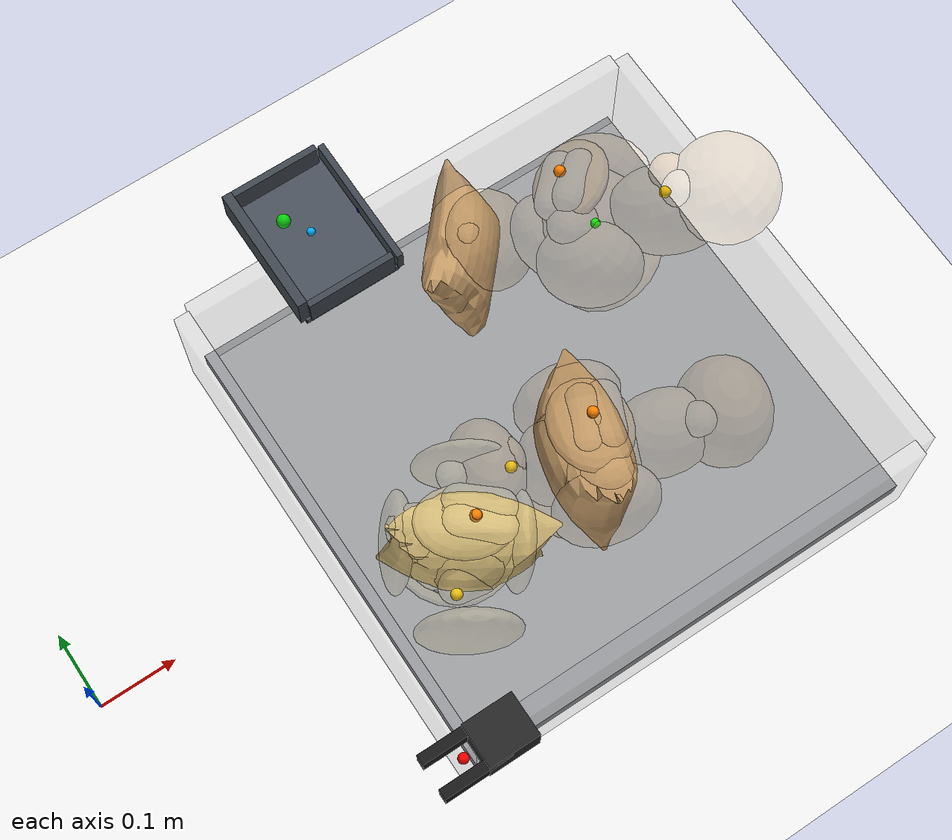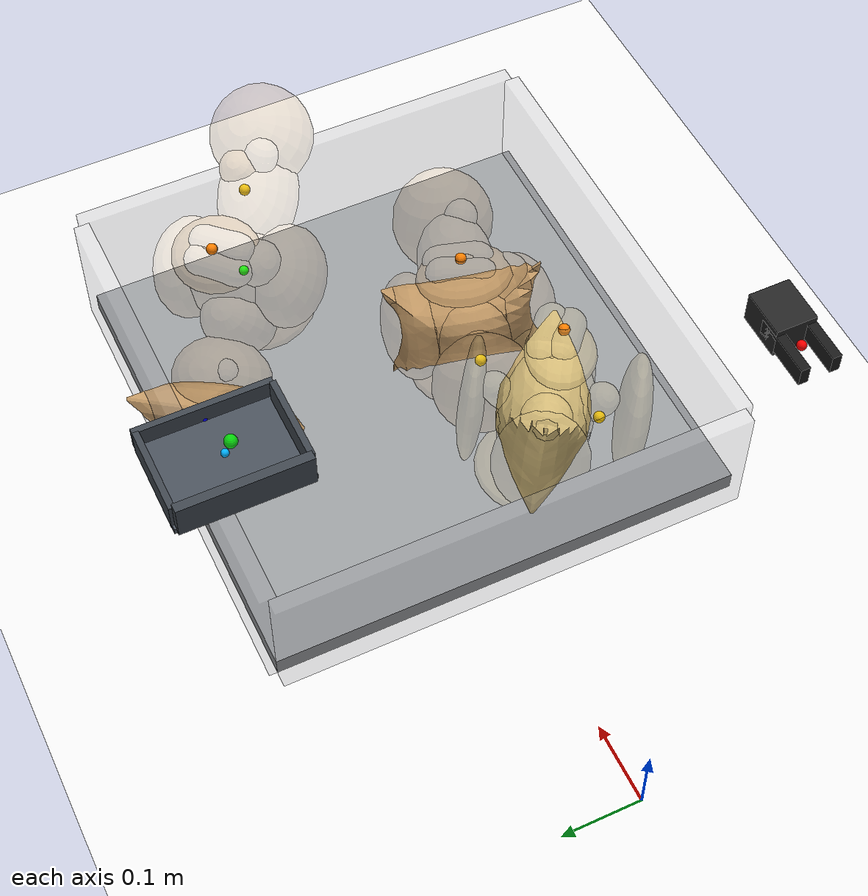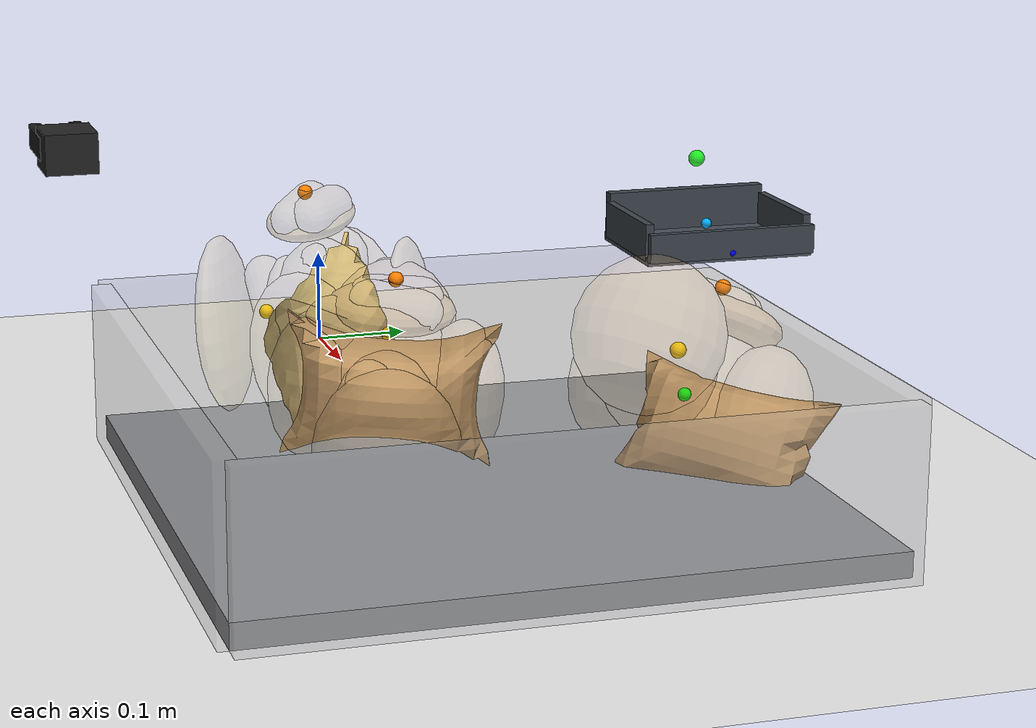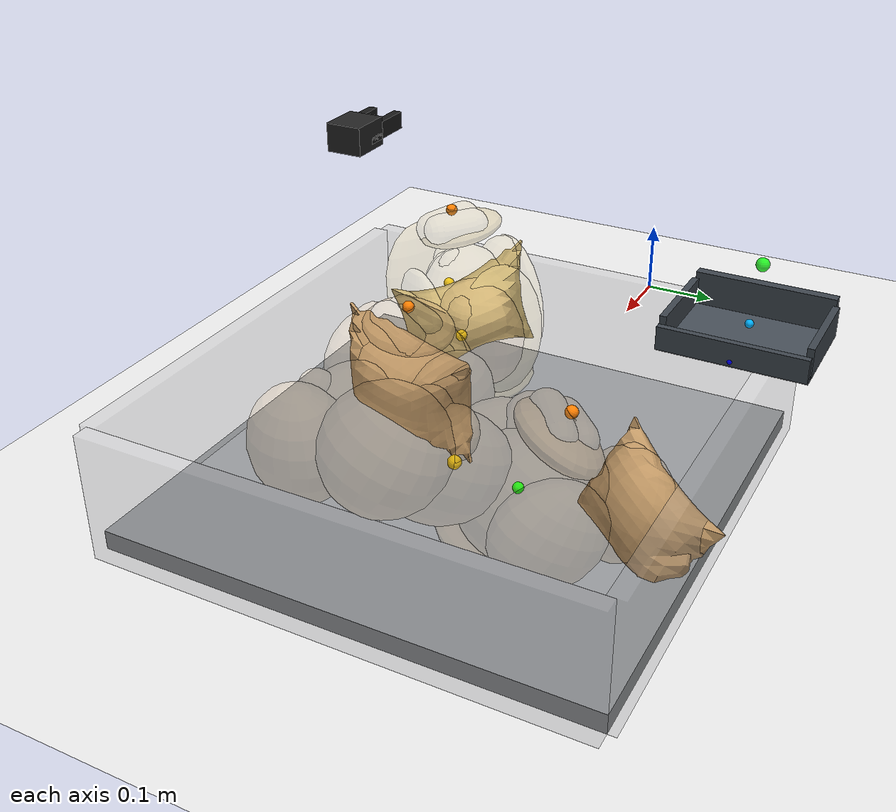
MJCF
<mujoco model="eccentric_fill_seed10">
  <compiler angle="radian" coordinate="local" inertiafromgeom="true" meshdir="D:/Michael/2025/01.Research/01.Parceldetection/16.Pybullet/bullet3-master (1)/bullet3-master/examples/pybullet/examples/DeformableTest/Sackcodex2/object"/>
  <option timestep="0.002" gravity="0 0 -9.81" integrator="implicitfast" iterations="100" tolerance="1e-8"/>
  <size memory="768M" nconmax="12000"/>

  <visual>
    <global azimuth="128" elevation="-20" offwidth="1280" offheight="720"/>
    <headlight ambient="0.34 0.34 0.34" diffuse="0.78 0.78 0.78" specular="0.15 0.15 0.15"/>
    <rgba haze="0.11 0.13 0.18 1"/>
  </visual>

  <default>
    <geom condim="4" friction="1.15 0.03 0.01" margin="0.003" solimp="0.93 0.98 0.003" solref="0.012 1"/>
    <joint damping="1.2" armature="0.002"/>
    <position kp="2500" forcelimited="true" forcerange="-420 420"/>
    <motor ctrllimited="true"/>
  </default>

  <asset>
    <mesh name="sack_0_visual_mesh" file="sack6Apply.obj" scale="0.0720 0.0720 0.0750"/>
    <mesh name="sack_1_visual_mesh" file="sack3.obj" scale="0.0686 0.0686 0.0706"/>
    <mesh name="sack_2_visual_mesh" file="sack8.obj" scale="0.0709 0.0709 0.0762"/>
  </asset>

  <worldbody>
    <light name="key" pos="0.85 0.15 1.8" dir="-0.2 -0.1 -1" directional="true"/>
    <geom name="floor" type="plane" size="2 2 0.1" rgba="0.93 0.93 0.93 1"/>
    <geom name="work_pad" type="box" pos="0.62 0 0.012" size="0.30 0.30 0.012" rgba="0.60 0.61 0.62 1" friction="1.4 0.05 0.01"/>
    <geom name="corral_front" type="box" pos="0.93 0.00 0.08" size="0.010 0.30 0.08" rgba="0.55 0.55 0.58 0.22" friction="1.0 0.03 0.01"/>
    <geom name="corral_back" type="box" pos="0.31 0.00 0.08" size="0.010 0.30 0.08" rgba="0.55 0.55 0.58 0.18" friction="1.0 0.03 0.01"/>
    <geom name="corral_left" type="box" pos="0.62 0.30 0.08" size="0.30 0.010 0.08" rgba="0.55 0.55 0.58 0.14" friction="1.0 0.03 0.01"/>
    <geom name="corral_right" type="box" pos="0.62 -0.30 0.08" size="0.30 0.010 0.08" rgba="0.55 0.55 0.58 0.14" friction="1.0 0.03 0.01"/>
    <camera name="overview" pos="1.22 0.00 0.92" xyaxes="0 1 0 -0.46 0 0.88"/>

    <body name="gripper_mocap" mocap="true" pos="0.36 -0.33 0.30" quat="0.707107 0 -0.707107 0"/>
    <body name="scoop_mocap" mocap="true" pos="0.42 0.28 0.20" quat="1 0 0 0"/>

    <body name="gripper_ctrl_base" pos="0.36 -0.33 0.30">
      <inertial pos="0 0 0" mass="0.001" diaginertia="1e-6 1e-6 1e-6"/>
      <joint name="gripper_ctrl_x" type="slide" axis="1 0 0" limited="true" range="0.20 1.00"/>
      <body name="gripper_ctrl_y_body">
        <inertial pos="0 0 0" mass="0.001" diaginertia="1e-6 1e-6 1e-6"/>
        <joint name="gripper_ctrl_y" type="slide" axis="0 1 0" limited="true" range="-0.60 0.60"/>
        <body name="gripper_ctrl_z_body">
          <inertial pos="0 0 0" mass="0.001" diaginertia="1e-6 1e-6 1e-6"/>
          <joint name="gripper_ctrl_z" type="slide" axis="0 0 1" limited="true" range="0.04 0.70"/>
          <body name="gripper_ctrl_yaw_body">
            <inertial pos="0 0 0" mass="0.001" diaginertia="1e-6 1e-6 1e-6"/>
            <joint name="gripper_ctrl_yaw" type="hinge" axis="0 0 1" limited="true" range="-3.1416 3.1416"/>
            <body name="gripper_ctrl_pitch_body">
              <inertial pos="0 0 0" mass="0.001" diaginertia="1e-6 1e-6 1e-6"/>
              <joint name="gripper_ctrl_pitch" type="hinge" axis="0 1 0" limited="true" range="-3.1416 3.1416"/>
              <body name="gripper_ctrl_roll_body">
                <inertial pos="0 0 0" mass="0.001" diaginertia="1e-6 1e-6 1e-6"/>
                <joint name="gripper_ctrl_roll" type="hinge" axis="1 0 0" limited="true" range="-3.1416 3.1416"/>
              </body>
            </body>
          </body>
        </body>
      </body>
    </body>

    <body name="scoop_ctrl_base" pos="0.42 0.28 0.20">
      <inertial pos="0 0 0" mass="0.001" diaginertia="1e-6 1e-6 1e-6"/>
      <joint name="scoop_ctrl_x" type="slide" axis="1 0 0" limited="true" range="0.20 1.00"/>
      <body name="scoop_ctrl_y_body">
        <inertial pos="0 0 0" mass="0.001" diaginertia="1e-6 1e-6 1e-6"/>
        <joint name="scoop_ctrl_y" type="slide" axis="0 1 0" limited="true" range="-0.60 0.60"/>
        <body name="scoop_ctrl_z_body">
          <inertial pos="0 0 0" mass="0.001" diaginertia="1e-6 1e-6 1e-6"/>
          <joint name="scoop_ctrl_z" type="slide" axis="0 0 1" limited="true" range="0.04 0.70"/>
          <body name="scoop_ctrl_yaw_body">
            <inertial pos="0 0 0" mass="0.001" diaginertia="1e-6 1e-6 1e-6"/>
            <joint name="scoop_ctrl_yaw" type="hinge" axis="0 0 1" limited="true" range="-3.1416 3.1416"/>
            <body name="scoop_ctrl_pitch_body">
              <inertial pos="0 0 0" mass="0.001" diaginertia="1e-6 1e-6 1e-6"/>
              <joint name="scoop_ctrl_pitch" type="hinge" axis="0 1 0" limited="true" range="-3.1416 3.1416"/>
              <body name="scoop_ctrl_roll_body">
                <inertial pos="0 0 0" mass="0.001" diaginertia="1e-6 1e-6 1e-6"/>
                <joint name="scoop_ctrl_roll" type="hinge" axis="1 0 0" limited="true" range="-3.1416 3.1416"/>
              </body>
            </body>
          </body>
        </body>
      </body>
    </body>

    <body name="gripper_tool" pos="0.36 -0.33 0.30" quat="0.707107 0 -0.707107 0">
      <freejoint name="gripper_tool_free"/>
      <inertial pos="0 0 0.04" mass="0.08" diaginertia="0.0002 0.0002 0.0002"/>
      <geom name="gripper_palm" type="box" pos="0 0 0.030" size="0.020 0.026 0.030" rgba="0.14 0.14 0.14 1"/>
      <body name="left_finger_body" pos="0 0 0.072">
        <joint name="left_finger_slide" type="slide" axis="0 1 0" limited="true" range="0.010 0.040" damping="12"/>
        <geom name="left_finger_geom" type="box" pos="0 0.020 0" size="0.012 0.006 0.040" rgba="0.10 0.10 0.10 1" friction="2.2 0.05 0.01"/>
      </body>
      <body name="right_finger_body" pos="0 0 0.072">
        <joint name="right_finger_slide" type="slide" axis="0 -1 0" limited="true" range="0.010 0.040" damping="12"/>
        <geom name="right_finger_geom" type="box" pos="0 -0.020 0" size="0.012 0.006 0.040" rgba="0.10 0.10 0.10 1" friction="2.2 0.05 0.01"/>
      </body>
      <site name="gripper_pinch_site" pos="0 0 0.074" size="0.006" rgba="1 0 0 1"/>
    </body>

    <body name="scoop_tool" pos="0.42 0.28 0.20" quat="1 0 0 0">
      <freejoint name="scoop_tool_free"/>
      <inertial pos="0 0 0.02" mass="0.10" diaginertia="0.0003 0.0003 0.0003"/>
      <geom name="scoop_plate" type="box" pos="0.062 0 0" size="0.062 0.085 0.004" rgba="0.28 0.31 0.35 1" friction="1.7 0.05 0.01"/>
      <geom name="scoop_lip" type="box" pos="0.126 0 0.014" size="0.004 0.085 0.014" rgba="0.24 0.27 0.30 1" friction="1.7 0.05 0.01"/>
      <geom name="scoop_left_rail" type="box" pos="0.062 0.082 0.018" size="0.056 0.004 0.018" rgba="0.24 0.27 0.30 1"/>
      <geom name="scoop_right_rail" type="box" pos="0.062 -0.082 0.018" size="0.056 0.004 0.018" rgba="0.24 0.27 0.30 1"/>
      <geom name="scoop_backstop" type="box" pos="0.000 0 0.022" size="0.006 0.082 0.022" rgba="0.24 0.27 0.30 1"/>
      <site name="scoop_tip_site" pos="0.126 0 0.005" size="0.005" rgba="0 0 1 1"/>
      <site name="scoop_center_site" pos="0.060 0 0.020" size="0.005" rgba="0 0.7 1 1"/>
      <site name="score_overlay_site" pos="0.030 0 0.080" size="0.008" rgba="0 1 0 0.8"/>
    </body>

    <body name="sack_0" pos="0.6150 -0.0831 0.1159" euler="-0.0408 0.1211 -1.8466">
      <freejoint name="sack_0_free"/>

      <geom name="sack_0_visual" type="mesh" mesh="sack_0_visual_mesh" rgba="0.760 0.600 0.400 0.92" contype="0" conaffinity="0"/>
      <site name="sack_0_center_site" pos="0 0 0.000" size="0.006" rgba="0 1 0 1"/>
      <site name="sack_0_top_site" pos="0.0014 -0.0063 0.1047" size="0.007" rgba="1 0.5 0 1"/>
      <site name="sack_0_side_site" pos="0.0036 -0.0935 0.018" size="0.007" rgba="1 0.8 0 1"/>

      <geom name="sack_0_core_geom" type="ellipsoid" pos="0 0 0.0058" size="0.0435 0.0345 0.0750" mass="0.8394" rgba="0.760 0.600 0.400 0.12" friction="1.0 0.03 0.01"/>
      <geom name="sack_0_core_front" type="capsule" fromto="-0.0204 0 -0.0180 0.0536 0 0.0580" size="0.0291" mass="0.1999" rgba="0.760 0.600 0.400 0.10"/>
      <geom name="sack_0_core_left" type="capsule" fromto="-0.016 0.0638 -0.012 0.020 0.1228 0.054" size="0.0209" mass="0.3597" rgba="0.760 0.600 0.400 0.10"/>
      <geom name="sack_0_core_right" type="capsule" fromto="-0.016 -0.0638 -0.012 0.020 -0.1228 0.054" size="0.0187" mass="0.3597" rgba="0.760 0.600 0.400 0.10"/>

      <!-- 자루의 외형은 둥근 shell lobe로 보이게 하고, contact proxy는 반투명하게 숨긴다. -->
      <geom name="sack_0_shell_main_visual" type="ellipsoid" pos="0.0018 -0.0005 -0.0053" size="0.0718 0.0647 0.0820" rgba="0.760 0.600 0.400 0.16" contype="0" conaffinity="0"/>
      <geom name="sack_0_shell_left_visual" type="ellipsoid" pos="0.0040 0.0917 0.0020" size="0.0488 0.0660 0.0673" rgba="0.760 0.600 0.400 0.14" contype="0" conaffinity="0"/>
      <geom name="sack_0_shell_right_visual" type="ellipsoid" pos="0.0040 -0.0469 0.0000" size="0.0459 0.0367 0.0656" rgba="0.760 0.600 0.400 0.12" contype="0" conaffinity="0"/>
      <geom name="sack_0_top_left_crown_visual" type="capsule" fromto="-0.0228 0.0166 0.0830 0.0228 0.0083 0.0870" size="0.0207" rgba="0.760 0.600 0.400 0.14" contype="0" conaffinity="0"/>
      <geom name="sack_0_top_right_crown_visual" type="capsule" fromto="-0.0228 -0.0083 0.0870 0.0228 -0.0166 0.0830" size="0.0207" rgba="0.760 0.600 0.400 0.14" contype="0" conaffinity="0"/>

      <body name="sack_0_bottom_support_proxy_body" pos="0.0006 -0.0046 -0.0799">
        <joint name="sack_0_bottom_x" type="slide" axis="1 0 0" limited="true" range="-0.012 0.012" damping="18" stiffness="462.0"/>
        <joint name="sack_0_bottom_y" type="slide" axis="0 1 0" limited="true" range="-0.012 0.012" damping="18" stiffness="462.0"/>
        <joint name="sack_0_bottom_z" type="slide" axis="0 0 1" limited="true" range="-0.008 0.020" damping="24" stiffness="569.1"/>
        <geom name="sack_0_bottom_support_proxy" type="ellipsoid" size="0.0728 0.0662 0.0139" mass="0.1599" rgba="0.760 0.600 0.400 0.10" friction="1.55 0.05 0.01"/>
        <geom name="sack_0_bottom_deform_visual" type="ellipsoid" size="0.0775 0.0722 0.0181" rgba="0.760 0.600 0.400 0.22" contype="0" conaffinity="0"/>
      </body>

      <body name="sack_0_top_grasp_proxy_body" pos="0.0036 -0.0064 0.0767">
        <joint name="sack_0_top_x" type="slide" axis="1 0 0" limited="true" range="-0.018 0.018" damping="12" stiffness="177.4"/>
        <joint name="sack_0_top_y" type="slide" axis="0 1 0" limited="true" range="-0.018 0.018" damping="12" stiffness="177.4"/>
        <joint name="sack_0_top_z" type="slide" axis="0 0 1" limited="true" range="-0.040 0.010" damping="14" stiffness="130.7"/>
        <geom name="sack_0_top_grasp_proxy" type="ellipsoid" size="0.0571 0.0462 0.0167" mass="0.1199" rgba="0.760 0.600 0.400 0.10" friction="2.2 0.05 0.01"/>
        <geom name="sack_0_top_deform_visual" type="ellipsoid" size="0.0594 0.0499 0.0218" rgba="0.760 0.600 0.400 0.36" contype="0" conaffinity="0"/>
        <geom name="sack_0_top_fold_left_visual" type="capsule" fromto="-0.0274 0.0129 0.000 0.0057 0.0037 0.0131" size="0.0149" rgba="0.760 0.600 0.400 0.26" contype="0" conaffinity="0"/>
        <geom name="sack_0_top_fold_right_visual" type="capsule" fromto="-0.0069 -0.0037 0.0131 0.0274 -0.0129 0.000" size="0.0149" rgba="0.760 0.600 0.400 0.26" contype="0" conaffinity="0"/>
      </body>

      <body name="sack_0_left_side_proxy_body" pos="0.0006 0.1679 0.010">
        <joint name="sack_0_left_side_slide" type="slide" axis="0 -1 0" limited="true" range="-0.028 0.016" damping="16" stiffness="230.7"/>
        <geom name="sack_0_left_side_proxy" type="ellipsoid" size="0.0631 0.0529 0.0719" mass="0.1199" rgba="0.760 0.600 0.400 0.08" friction="1.25 0.04 0.01"/>
        <geom name="sack_0_left_side_deform_visual" type="ellipsoid" size="0.0650 0.0572 0.0733" rgba="0.760 0.600 0.400 0.24" contype="0" conaffinity="0"/>
      </body>

      <body name="sack_0_right_side_proxy_body" pos="0.0006 -0.1231 0.010">
        <joint name="sack_0_right_side_slide" type="slide" axis="0 1 0" limited="true" range="-0.028 0.016" damping="16" stiffness="213.9"/>
        <geom name="sack_0_right_side_proxy" type="ellipsoid" size="0.0606 0.0413 0.0704" mass="0.1199" rgba="0.760 0.600 0.400 0.08" friction="1.25 0.04 0.01"/>
        <geom name="sack_0_right_side_deform_visual" type="ellipsoid" size="0.0625 0.0455 0.0719" rgba="0.760 0.600 0.400 0.24" contype="0" conaffinity="0"/>
      </body>

      <body name="sack_0_front_proxy_body" pos="0.0707 -0.0002 0.000">
        <joint name="sack_0_front_slide" type="slide" axis="-1 0 0" limited="true" range="-0.022 0.012" damping="15" stiffness="221.0"/>
        <geom name="sack_0_front_support_proxy" type="ellipsoid" size="0.0413 0.0642 0.0679" mass="0.0999" rgba="0.760 0.600 0.400 0.08" friction="1.20 0.04 0.01"/>
        <geom name="sack_0_front_deform_visual" type="ellipsoid" size="0.0421 0.0655 0.0692" rgba="0.760 0.600 0.400 0.20" contype="0" conaffinity="0"/>
      </body>

      <body name="sack_0_back_proxy_body" pos="-0.0657 -0.0002 0.000">
        <joint name="sack_0_back_slide" type="slide" axis="1 0 0" limited="true" range="-0.022 0.012" damping="15" stiffness="204.2"/>
        <geom name="sack_0_back_support_proxy" type="ellipsoid" size="0.0380 0.0642 0.0679" mass="0.0999" rgba="0.760 0.600 0.400 0.08" friction="1.20 0.04 0.01"/>
        <geom name="sack_0_back_deform_visual" type="ellipsoid" size="0.0396 0.0655 0.0692" rgba="0.760 0.600 0.400 0.20" contype="0" conaffinity="0"/>
      </body>

      <body name="sack_0_shape_proxy_body" pos="0.0022 -0.1054 0.0348">
        <joint name="sack_0_bulge_y" type="slide" axis="0 1 0" limited="true" range="-0.020 0.020" damping="8" stiffness="98.7"/>
        <joint name="sack_0_bulge_z" type="slide" axis="0 0 1" limited="true" range="-0.014 0.028" damping="8" stiffness="99.0"/>
        <geom name="sack_0_shape_proxy" type="ellipsoid" size="0.0251 0.0222 0.0327" mass="0.0799" rgba="0.760 0.600 0.400 0.10"/>
        <geom name="sack_0_shape_deform_visual" type="ellipsoid" size="0.0294 0.0265 0.0378" rgba="0.760 0.600 0.400 0.32" contype="0" conaffinity="0"/>
      </body>
    </body>

    <body name="sack_1" pos="0.7824 0.1401 0.1391" euler="-0.4548 -0.2930 -2.2998">
      <freejoint name="sack_1_free"/>

      <geom name="sack_1_visual" type="mesh" mesh="sack_1_visual_mesh" rgba="0.760 0.600 0.400 0.92" contype="0" conaffinity="0"/>
      <site name="sack_1_center_site" pos="0 0 0.000" size="0.006" rgba="0 1 0 1"/>
      <site name="sack_1_top_site" pos="-0.0035 0.0025 0.1014" size="0.007" rgba="1 0.5 0 1"/>
      <site name="sack_1_side_site" pos="-0.0087 0.0972 0.018" size="0.007" rgba="1 0.8 0 1"/>

      <geom name="sack_1_core_geom" type="ellipsoid" pos="0 0 0.0058" size="0.0431 0.0340 0.0742" mass="0.8445" rgba="0.760 0.600 0.400 0.12" friction="1.0 0.03 0.01"/>
      <geom name="sack_1_core_front" type="capsule" fromto="-0.0327 0 -0.0180 0.0413 0 0.0580" size="0.0286" mass="0.2011" rgba="0.760 0.600 0.400 0.10"/>
      <geom name="sack_1_core_left" type="capsule" fromto="-0.016 0.0695 -0.012 0.020 0.1357 0.054" size="0.0211" mass="0.3619" rgba="0.760 0.600 0.400 0.10"/>
      <geom name="sack_1_core_right" type="capsule" fromto="-0.016 -0.0695 -0.012 0.020 -0.1357 0.054" size="0.0189" mass="0.3619" rgba="0.760 0.600 0.400 0.10"/>

      <!-- 자루의 외형은 둥근 shell lobe로 보이게 하고, contact proxy는 반투명하게 숨긴다. -->
      <geom name="sack_1_shell_main_visual" type="ellipsoid" pos="-0.0043 -0.0058 -0.0047" size="0.0713 0.0638 0.0765" rgba="0.760 0.600 0.400 0.16" contype="0" conaffinity="0"/>
      <geom name="sack_1_shell_left_visual" type="ellipsoid" pos="0.0040 0.0941 0.0020" size="0.0485 0.0749 0.0627" rgba="0.760 0.600 0.400 0.14" contype="0" conaffinity="0"/>
      <geom name="sack_1_shell_right_visual" type="ellipsoid" pos="0.0040 -0.0631 0.0000" size="0.0457 0.0408 0.0612" rgba="0.760 0.600 0.400 0.12" contype="0" conaffinity="0"/>
      <geom name="sack_1_top_left_crown_visual" type="capsule" fromto="-0.0227 0.0162 0.0801 0.0227 0.0081 0.0841" size="0.0207" rgba="0.760 0.600 0.400 0.14" contype="0" conaffinity="0"/>
      <geom name="sack_1_top_right_crown_visual" type="capsule" fromto="-0.0227 -0.0081 0.0841 0.0227 -0.0162 0.0801" size="0.0207" rgba="0.760 0.600 0.400 0.14" contype="0" conaffinity="0"/>

      <body name="sack_1_bottom_support_proxy_body" pos="-0.0016 -0.0162 -0.0733">
        <joint name="sack_1_bottom_x" type="slide" axis="1 0 0" limited="true" range="-0.012 0.012" damping="18" stiffness="448.7"/>
        <joint name="sack_1_bottom_y" type="slide" axis="0 1 0" limited="true" range="-0.012 0.012" damping="18" stiffness="448.7"/>
        <joint name="sack_1_bottom_z" type="slide" axis="0 0 1" limited="true" range="-0.008 0.020" damping="24" stiffness="552.8"/>
        <geom name="sack_1_bottom_support_proxy" type="ellipsoid" size="0.0724 0.0651 0.0144" mass="0.1609" rgba="0.760 0.600 0.400 0.10" friction="1.55 0.05 0.01"/>
        <geom name="sack_1_bottom_deform_visual" type="ellipsoid" size="0.0771 0.0711 0.0187" rgba="0.760 0.600 0.400 0.22" contype="0" conaffinity="0"/>
      </body>

      <body name="sack_1_top_grasp_proxy_body" pos="-0.0087 0.0020 0.0734">
        <joint name="sack_1_top_x" type="slide" axis="1 0 0" limited="true" range="-0.018 0.018" damping="12" stiffness="172.3"/>
        <joint name="sack_1_top_y" type="slide" axis="0 1 0" limited="true" range="-0.018 0.018" damping="12" stiffness="172.3"/>
        <joint name="sack_1_top_z" type="slide" axis="0 0 1" limited="true" range="-0.040 0.010" damping="14" stiffness="126.2"/>
        <geom name="sack_1_top_grasp_proxy" type="ellipsoid" size="0.0566 0.0451 0.0163" mass="0.1206" rgba="0.760 0.600 0.400 0.10" friction="2.2 0.05 0.01"/>
        <geom name="sack_1_top_deform_visual" type="ellipsoid" size="0.0589 0.0487 0.0213" rgba="0.760 0.600 0.400 0.36" contype="0" conaffinity="0"/>
        <geom name="sack_1_top_fold_left_visual" type="capsule" fromto="-0.0272 0.0126 0.000 0.0057 0.0036 0.0129" size="0.0149" rgba="0.760 0.600 0.400 0.26" contype="0" conaffinity="0"/>
        <geom name="sack_1_top_fold_right_visual" type="capsule" fromto="-0.0068 -0.0036 0.0129 0.0272 -0.0126 0.000" size="0.0149" rgba="0.760 0.600 0.400 0.26" contype="0" conaffinity="0"/>
      </body>

      <body name="sack_1_left_side_proxy_body" pos="-0.0014 0.1692 0.010">
        <joint name="sack_1_left_side_slide" type="slide" axis="0 -1 0" limited="true" range="-0.028 0.016" damping="16" stiffness="221.9"/>
        <geom name="sack_1_left_side_proxy" type="ellipsoid" size="0.0626 0.0602 0.0653" mass="0.1206" rgba="0.760 0.600 0.400 0.08" friction="1.25 0.04 0.01"/>
        <geom name="sack_1_left_side_deform_visual" type="ellipsoid" size="0.0645 0.0650 0.0666" rgba="0.760 0.600 0.400 0.24" contype="0" conaffinity="0"/>
      </body>

      <body name="sack_1_right_side_proxy_body" pos="-0.0014 -0.1381 0.010">
        <joint name="sack_1_right_side_slide" type="slide" axis="0 1 0" limited="true" range="-0.028 0.016" damping="16" stiffness="205.8"/>
        <geom name="sack_1_right_side_proxy" type="ellipsoid" size="0.0601 0.0470 0.0640" mass="0.1206" rgba="0.760 0.600 0.400 0.08" friction="1.25 0.04 0.01"/>
        <geom name="sack_1_right_side_deform_visual" type="ellipsoid" size="0.0620 0.0518 0.0653" rgba="0.760 0.600 0.400 0.24" contype="0" conaffinity="0"/>
      </body>

      <body name="sack_1_front_proxy_body" pos="0.0580 -0.0019 0.000">
        <joint name="sack_1_front_slide" type="slide" axis="-1 0 0" limited="true" range="-0.022 0.012" damping="15" stiffness="214.3"/>
        <geom name="sack_1_front_support_proxy" type="ellipsoid" size="0.0461 0.0631 0.0613" mass="0.1005" rgba="0.760 0.600 0.400 0.08" friction="1.20 0.04 0.01"/>
        <geom name="sack_1_front_deform_visual" type="ellipsoid" size="0.0471 0.0644 0.0626" rgba="0.760 0.600 0.400 0.20" contype="0" conaffinity="0"/>
      </body>

      <body name="sack_1_back_proxy_body" pos="-0.0701 -0.0019 0.000">
        <joint name="sack_1_back_slide" type="slide" axis="1 0 0" limited="true" range="-0.022 0.012" damping="15" stiffness="198.3"/>
        <geom name="sack_1_back_support_proxy" type="ellipsoid" size="0.0424 0.0631 0.0613" mass="0.1005" rgba="0.760 0.600 0.400 0.08" friction="1.20 0.04 0.01"/>
        <geom name="sack_1_back_deform_visual" type="ellipsoid" size="0.0443 0.0644 0.0626" rgba="0.760 0.600 0.400 0.20" contype="0" conaffinity="0"/>
      </body>

      <body name="sack_1_shape_proxy_body" pos="-0.0052 0.1165 0.0386">
        <joint name="sack_1_bulge_y" type="slide" axis="0 1 0" limited="true" range="-0.020 0.020" damping="8" stiffness="107.5"/>
        <joint name="sack_1_bulge_z" type="slide" axis="0 0 1" limited="true" range="-0.014 0.028" damping="8" stiffness="105.7"/>
        <geom name="sack_1_shape_proxy" type="ellipsoid" size="0.0253 0.0226 0.0323" mass="0.0804" rgba="0.760 0.600 0.400 0.10"/>
        <geom name="sack_1_shape_deform_visual" type="ellipsoid" size="0.0296 0.0270 0.0373" rgba="0.760 0.600 0.400 0.32" contype="0" conaffinity="0"/>
      </body>
    </body>

    <body name="sack_2" pos="0.4398 -0.1005 0.1240" euler="0.1122 0.0661 2.5947">
      <freejoint name="sack_2_free"/>

      <geom name="sack_2_visual" type="mesh" mesh="sack_2_visual_mesh" rgba="0.840 0.740 0.480 0.92" contype="0" conaffinity="0"/>
      <site name="sack_2_center_site" pos="0 0 0.000" size="0.006" rgba="0 1 0 1"/>
      <site name="sack_2_top_site" pos="0.0062 0.0066 0.1440" size="0.007" rgba="1 0.5 0 1"/>
      <site name="sack_2_side_site" pos="0.0155 0.0637 0.018" size="0.007" rgba="1 0.8 0 1"/>

      <geom name="sack_2_core_geom" type="ellipsoid" pos="0 0 0.0059" size="0.0513 0.0432 0.0884" mass="1.0352" rgba="0.840 0.740 0.480 0.12" friction="1.0 0.03 0.01"/>
      <geom name="sack_2_core_front" type="capsule" fromto="-0.0085 0 -0.0180 0.0655 0 0.0580" size="0.0302" mass="0.2465" rgba="0.840 0.740 0.480 0.10"/>
      <geom name="sack_2_core_left" type="capsule" fromto="-0.016 0.0376 -0.012 0.020 0.0627 0.054" size="0.0202" mass="0.4437" rgba="0.840 0.740 0.480 0.10"/>
      <geom name="sack_2_core_right" type="capsule" fromto="-0.016 -0.0376 -0.012 0.020 -0.0627 0.054" size="0.0181" mass="0.4437" rgba="0.840 0.740 0.480 0.10"/>

      <!-- 자루의 외형은 둥근 shell lobe로 보이게 하고, contact proxy는 반투명하게 숨긴다. -->
      <geom name="sack_2_shell_main_visual" type="ellipsoid" pos="0.0077 0.0009 -0.0002" size="0.0683 0.0576 0.0948" rgba="0.840 0.740 0.480 0.16" contype="0" conaffinity="0"/>
      <geom name="sack_2_shell_left_visual" type="ellipsoid" pos="0.0040 0.0346 0.0020" size="0.0464 0.0248 0.0778" rgba="0.840 0.740 0.480 0.14" contype="0" conaffinity="0"/>
      <geom name="sack_2_shell_right_visual" type="ellipsoid" pos="0.0040 -0.0177 0.0000" size="0.0437 0.0180 0.0759" rgba="0.840 0.740 0.480 0.12" contype="0" conaffinity="0"/>
      <geom name="sack_2_top_left_crown_visual" type="capsule" fromto="-0.0217 0.0140 0.1262 0.0217 0.0070 0.1302" size="0.0196" rgba="0.840 0.740 0.480 0.14" contype="0" conaffinity="0"/>
      <geom name="sack_2_top_right_crown_visual" type="capsule" fromto="-0.0217 -0.0070 0.1302 0.0217 -0.0140 0.1262" size="0.0196" rgba="0.840 0.740 0.480 0.14" contype="0" conaffinity="0"/>

      <body name="sack_2_bottom_support_proxy_body" pos="0.0028 -0.0099 -0.0960">
        <joint name="sack_2_bottom_x" type="slide" axis="1 0 0" limited="true" range="-0.012 0.012" damping="18" stiffness="495.5"/>
        <joint name="sack_2_bottom_y" type="slide" axis="0 1 0" limited="true" range="-0.012 0.012" damping="18" stiffness="495.5"/>
        <joint name="sack_2_bottom_z" type="slide" axis="0 0 1" limited="true" range="-0.008 0.020" damping="24" stiffness="610.1"/>
        <geom name="sack_2_bottom_support_proxy" type="ellipsoid" size="0.0701 0.0589 0.0128" mass="0.1972" rgba="0.840 0.740 0.480 0.10" friction="1.55 0.05 0.01"/>
        <geom name="sack_2_bottom_deform_visual" type="ellipsoid" size="0.0746 0.0649 0.0167" rgba="0.840 0.740 0.480 0.22" contype="0" conaffinity="0"/>
      </body>

      <body name="sack_2_top_grasp_proxy_body" pos="0.0155 0.0067 0.1160">
        <joint name="sack_2_top_x" type="slide" axis="1 0 0" limited="true" range="-0.018 0.018" damping="12" stiffness="190.5"/>
        <joint name="sack_2_top_y" type="slide" axis="0 1 0" limited="true" range="-0.018 0.018" damping="12" stiffness="190.5"/>
        <joint name="sack_2_top_z" type="slide" axis="0 0 1" limited="true" range="-0.040 0.010" damping="14" stiffness="141.8"/>
        <geom name="sack_2_top_grasp_proxy" type="ellipsoid" size="0.0542 0.0389 0.0134" mass="0.1479" rgba="0.840 0.740 0.480 0.10" friction="2.2 0.05 0.01"/>
        <geom name="sack_2_top_deform_visual" type="ellipsoid" size="0.0563 0.0420 0.0178" rgba="0.840 0.740 0.480 0.36" contype="0" conaffinity="0"/>
        <geom name="sack_2_top_fold_left_visual" type="capsule" fromto="-0.0260 0.0109 0.000 0.0054 0.0031 0.0110" size="0.0141" rgba="0.840 0.740 0.480 0.26" contype="0" conaffinity="0"/>
        <geom name="sack_2_top_fold_right_visual" type="capsule" fromto="-0.0065 -0.0031 0.0110 0.0260 -0.0109 0.000" size="0.0141" rgba="0.840 0.740 0.480 0.26" contype="0" conaffinity="0"/>
      </body>

      <body name="sack_2_left_side_proxy_body" pos="0.0025 0.1035 0.010">
        <joint name="sack_2_left_side_slide" type="slide" axis="0 -1 0" limited="true" range="-0.028 0.016" damping="16" stiffness="253.4"/>
        <geom name="sack_2_left_side_proxy" type="ellipsoid" size="0.0602 0.0192 0.0880" mass="0.1479" rgba="0.840 0.740 0.480 0.08" friction="1.25 0.04 0.01"/>
        <geom name="sack_2_left_side_deform_visual" type="ellipsoid" size="0.0620 0.0207 0.0897" rgba="0.840 0.740 0.480 0.24" contype="0" conaffinity="0"/>
      </body>

      <body name="sack_2_right_side_proxy_body" pos="0.0025 -0.0866 0.010">
        <joint name="sack_2_right_side_slide" type="slide" axis="0 1 0" limited="true" range="-0.028 0.016" damping="16" stiffness="234.8"/>
        <geom name="sack_2_right_side_proxy" type="ellipsoid" size="0.0577 0.0149 0.0862" mass="0.1479" rgba="0.840 0.740 0.480 0.08" friction="1.25 0.04 0.01"/>
        <geom name="sack_2_right_side_deform_visual" type="ellipsoid" size="0.0596 0.0165 0.0880" rgba="0.840 0.740 0.480 0.24" contype="0" conaffinity="0"/>
      </body>

      <body name="sack_2_front_proxy_body" pos="0.0796 0.0003 0.000">
        <joint name="sack_2_front_slide" type="slide" axis="-1 0 0" limited="true" range="-0.022 0.012" damping="15" stiffness="237.8"/>
        <geom name="sack_2_front_support_proxy" type="ellipsoid" size="0.0188 0.0569 0.0840" mass="0.1232" rgba="0.840 0.740 0.480 0.08" friction="1.20 0.04 0.01"/>
        <geom name="sack_2_front_deform_visual" type="ellipsoid" size="0.0191 0.0581 0.0856" rgba="0.840 0.740 0.480 0.20" contype="0" conaffinity="0"/>
      </body>

      <body name="sack_2_back_proxy_body" pos="-0.0580 0.0003 0.000">
        <joint name="sack_2_back_slide" type="slide" axis="1 0 0" limited="true" range="-0.022 0.012" damping="15" stiffness="219.1"/>
        <geom name="sack_2_back_support_proxy" type="ellipsoid" size="0.0173 0.0569 0.0840" mass="0.1232" rgba="0.840 0.740 0.480 0.08" friction="1.20 0.04 0.01"/>
        <geom name="sack_2_back_deform_visual" type="ellipsoid" size="0.0180 0.0581 0.0856" rgba="0.840 0.740 0.480 0.20" contype="0" conaffinity="0"/>
      </body>

      <body name="sack_2_shape_proxy_body" pos="0.0093 0.0307 0.0251">
        <joint name="sack_2_bulge_y" type="slide" axis="0 1 0" limited="true" range="-0.020 0.020" damping="8" stiffness="76.3"/>
        <joint name="sack_2_bulge_z" type="slide" axis="0 0 1" limited="true" range="-0.014 0.028" damping="8" stiffness="82.2"/>
        <geom name="sack_2_shape_proxy" type="ellipsoid" size="0.0242 0.0204 0.0294" mass="0.0986" rgba="0.840 0.740 0.480 0.10"/>
        <geom name="sack_2_shape_deform_visual" type="ellipsoid" size="0.0282 0.0244 0.0338" rgba="0.840 0.740 0.480 0.32" contype="0" conaffinity="0"/>
      </body>
    </body>
  </worldbody>

  <equality>
    <weld name="gripper_follow" body1="gripper_mocap" body2="gripper_tool" torquescale="400" solref="0.002 1" solimp="0.99 0.999 0.0001"/>
    <weld name="scoop_follow" body1="scoop_mocap" body2="scoop_tool" torquescale="500" solref="0.002 1" solimp="0.99 0.999 0.0001"/>
  </equality>

  <actuator>
    <position name="gripper_ctrl_x_act" joint="gripper_ctrl_x" ctrlrange="0.20 1.00" kp="3500" forcerange="-300 300"/>
    <position name="gripper_ctrl_y_act" joint="gripper_ctrl_y" ctrlrange="-0.60 0.60" kp="3500" forcerange="-300 300"/>
    <position name="gripper_ctrl_z_act" joint="gripper_ctrl_z" ctrlrange="0.04 0.70" kp="3500" forcerange="-300 300"/>
    <position name="gripper_ctrl_yaw_act" joint="gripper_ctrl_yaw" ctrlrange="-3.1416 3.1416" kp="1800" forcerange="-250 250"/>
    <position name="gripper_ctrl_pitch_act" joint="gripper_ctrl_pitch" ctrlrange="-3.1416 3.1416" kp="1800" forcerange="-250 250"/>
    <position name="gripper_ctrl_roll_act" joint="gripper_ctrl_roll" ctrlrange="-3.1416 3.1416" kp="1800" forcerange="-250 250"/>
    <position name="scoop_ctrl_x_act" joint="scoop_ctrl_x" ctrlrange="0.20 1.00" kp="3500" forcerange="-300 300"/>
    <position name="scoop_ctrl_y_act" joint="scoop_ctrl_y" ctrlrange="-0.60 0.60" kp="3500" forcerange="-300 300"/>
    <position name="scoop_ctrl_z_act" joint="scoop_ctrl_z" ctrlrange="0.04 0.70" kp="3500" forcerange="-300 300"/>
    <position name="scoop_ctrl_yaw_act" joint="scoop_ctrl_yaw" ctrlrange="-3.1416 3.1416" kp="1800" forcerange="-250 250"/>
    <position name="scoop_ctrl_pitch_act" joint="scoop_ctrl_pitch" ctrlrange="-3.1416 3.1416" kp="1800" forcerange="-250 250"/>
    <position name="scoop_ctrl_roll_act" joint="scoop_ctrl_roll" ctrlrange="-3.1416 3.1416" kp="1800" forcerange="-250 250"/>
    <position name="left_finger_act" joint="left_finger_slide" ctrlrange="0.010 0.040" kp="2800" forcerange="-220 220"/>
    <position name="right_finger_act" joint="right_finger_slide" ctrlrange="0.010 0.040" kp="2800" forcerange="-220 220"/>
  </actuator>

  <contact>
    <exclude body1="sack_0_top_grasp_proxy_body" body2="sack_0_left_side_proxy_body"/>
    <exclude body1="sack_0_top_grasp_proxy_body" body2="sack_0_right_side_proxy_body"/>
    <exclude body1="sack_1_top_grasp_proxy_body" body2="sack_1_left_side_proxy_body"/>
    <exclude body1="sack_1_top_grasp_proxy_body" body2="sack_1_right_side_proxy_body"/>
    <exclude body1="sack_2_top_grasp_proxy_body" body2="sack_2_left_side_proxy_body"/>
    <exclude body1="sack_2_top_grasp_proxy_body" body2="sack_2_right_side_proxy_body"/>
  </contact>
</mujoco>
